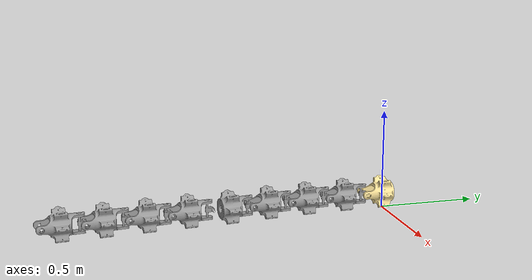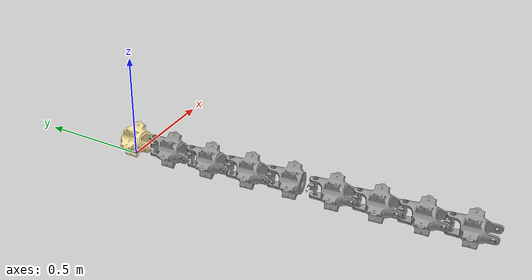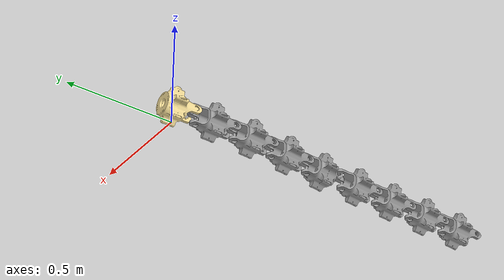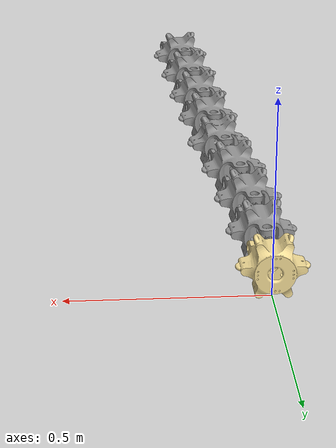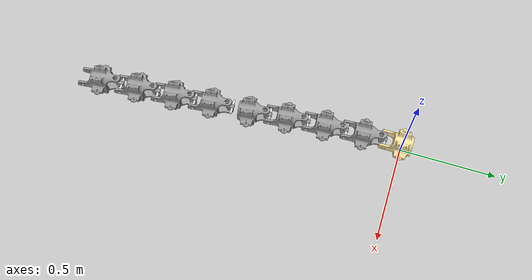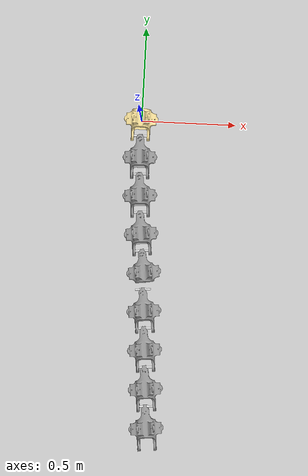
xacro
<?xml version="1.0" ?>
<!-- |    This document was autogenerated by xacro from snake.urdf                     | -->
<!-- |    EDITING THIS FILE BY HAND IS NOT RECOMMENDED                                 | -->
<robot name="snake2">
  <link name="base_link">
    <inertial>
      <origin rpy="0 0 0" xyz="-0.000234387980967782 -0.00697698813928649 0.0800930918880029"/>
      <mass value="0.7"/>
      <inertia ixx="5" ixy="0" ixz="0" iyy="5" iyz="0" izz="5"/>
    </inertial>
    <visual>
      <origin rpy="0 0 0" xyz="0 0 0"/>
      <geometry>
        <mesh filename="package://snake2_description/meshes/base_link.STL"/>
      </geometry>
      <material name="">
        <color rgba="0.968627450980392 0.87843137254902 0.6 1"/>
      </material>
    </visual>
    <collision>
      <origin rpy="0 0 0" xyz="0 0 0"/>
      <geometry>
        <mesh filename="package://snake2_description/meshes/base_link.STL"/>
      </geometry>
    </collision>
  </link>
  <link name="l1">
    <inertial>
      <origin rpy="0 0 0" xyz="-9.30008088317891E-08 6.32183255932228E-05 2.34841335058911E-08"/>
      <mass value="0.5"/>
      <inertia ixx="5" ixy="0" ixz="0" iyy="5" iyz="0" izz="5"/>
    </inertial>
    <visual>
      <origin rpy="0 0 0" xyz="0 0 0"/>
      <geometry>
        <mesh filename="package://snake2_description/meshes/l1.STL"/>
      </geometry>
      <material name="">
        <color rgba="1 1 1 1"/>
      </material>
    </visual>
    <collision>
      <origin rpy="0 0 0" xyz="0 0 0"/>
      <geometry>
        <mesh filename="package://snake2_description/meshes/l1.STL"/>
      </geometry>
    </collision>
  </link>
  <joint name="j1" type="revolute">
    <origin rpy="0 0 0" xyz="-0.00023776 -0.09187 0.078152"/>
    <parent link="base_link"/>
    <child link="l1"/>
    <axis xyz="1 0 0"/>
    <limit effort="100" lower="-7" upper="7" velocity="100"/>
  </joint>
  <link name="l2">
    <inertial>
      <origin rpy="0 0 0" xyz="0.00300986957255078 -0.0868389503008905 0.00190271917035976"/>
      <mass value="0.7"/>
      <inertia ixx="5" ixy="0" ixz="0" iyy="5" iyz="0" izz="5"/>
    </inertial>
    <visual>
      <origin rpy="0 0 0" xyz="0 0 0"/>
      <geometry>
        <mesh filename="package://snake2_description/meshes/l2.STL"/>
      </geometry>
      <material name="">
        <color rgba="0.6 0.6 0.6 1"/>
      </material>
    </visual>
    <collision>
      <origin rpy="0 0 0" xyz="0 0 0"/>
      <geometry>
        <mesh filename="package://snake2_description/meshes/l2.STL"/>
      </geometry>
    </collision>
  </link>
  <joint name="j2" type="revolute">
    <origin rpy="0 0 0" xyz="0 -0.025 0"/>
    <parent link="l1"/>
    <child link="l2"/>
    <axis xyz="0 0 -1"/>
    <limit effort="100" lower="-7" upper="7" velocity="100"/>
  </joint>
  <link name="l3">
    <inertial>
      <origin rpy="0 0 0" xyz="-2.27777575889654E-06 6.31778937628669E-05 2.33684780207022E-08"/>
      <mass value="0.5"/>
       <inertia ixx="5" ixy="0" ixz="0" iyy="5" iyz="0" izz="5"/>
    </inertial>
    <visual>
      <origin rpy="0 0 0" xyz="0 0 0"/>
      <geometry>
        <mesh filename="package://snake2_description/meshes/l3.STL"/>
      </geometry>
      <material name="">
        <color rgba="1 1 1 1"/>
      </material>
    </visual>
    <collision>
      <origin rpy="0 0 0" xyz="0 0 0"/>
      <geometry>
        <mesh filename="package://snake2_description/meshes/l3.STL"/>
      </geometry>
    </collision>
  </link>
  <joint name="j3" type="revolute">
    <origin rpy="0 0 0" xyz="0.00615167738184841 -0.177893667299857 0"/>
    <parent link="l2"/>
    <child link="l3"/>
    <axis xyz="0.999402625280054 0.0345599852913034 0"/>
    <limit effort="100" lower="-7" upper="7" velocity="100"/>
  </joint>
  <link name="l4">
    <inertial>
      <origin rpy="0 0 0" xyz="0.00600921102535792 -0.0866830524957057 0.00190271617698692"/>
      <mass value="0.707086339902103"/>
       <inertia ixx="5" ixy="0" ixz="0" iyy="5" iyz="0" izz="5"/>
    </inertial>
    <visual>
      <origin rpy="0 0 0" xyz="0 0 0"/>
      <geometry>
        <mesh filename="package://snake2_description/meshes/l4.STL"/>
      </geometry>
      <material name="">
        <color rgba="0.6 0.6 0.6 1"/>
      </material>
    </visual>
    <collision>
      <origin rpy="0 0 0" xyz="0 0 0"/>
      <geometry>
        <mesh filename="package://snake2_description/meshes/l4.STL"/>
      </geometry>
    </collision>
  </link>
  <joint name="j4" type="revolute">
    <origin rpy="0 0 0" xyz="0.000863999632282564 -0.0249850656320013 0"/>
    <parent link="l3"/>
    <child link="l4"/>
    <axis xyz="0 0 -1"/>
    <limit effort="100" lower="-7" upper="7" velocity="100"/>
  </joint>
  <link name="l5">
    <inertial>
      <origin rpy="0 0 0" xyz="-4.4598296490006E-06 6.30614553610576E-05 2.33497702943619E-08"/>
      <mass value="0.5"/>
       <inertia ixx="5" ixy="0" ixz="0" iyy="5" iyz="0" izz="5"/>
    </inertial>
    <visual>
      <origin rpy="0 0 0" xyz="0 0 0"/>
      <geometry>
        <mesh filename="package://snake2_description/meshes/l5.STL"/>
      </geometry>
      <material name="">
        <color rgba="1 1 1 1"/>
      </material>
    </visual>
    <collision>
      <origin rpy="0 0 0" xyz="0 0 0"/>
      <geometry>
        <mesh filename="package://snake2_description/meshes/l5.STL"/>
      </geometry>
    </collision>
  </link>
  <joint name="j5" type="revolute">
    <origin rpy="0 0 0" xyz="0.0122960050505949 -0.177574796240332 0"/>
    <parent link="l4"/>
    <child link="l5"/>
    <axis xyz="0.99761121483333 0.0690786800595353 0"/>
    <limit effort="100" lower="-7" upper="7" velocity="100"/>
  </joint>
  <link name="l6">
    <inertial>
      <origin rpy="0 0 0" xyz="0.00900137343373282 -0.0864234981702365 0.00190269434190572"/>
      <mass value="0.707087058502178"/>
       <inertia ixx="5" ixy="0" ixz="0" iyy="5" iyz="0" izz="5"/>
    </inertial>
    <visual>
      <origin rpy="0 0 0" xyz="0 0 0"/>
      <geometry>
        <mesh filename="package://snake2_description/meshes/l6.STL"/>
      </geometry>
      <material name="">
        <color rgba="0.6 0.6 0.6 1"/>
      </material>
    </visual>
    <collision>
      <origin rpy="0 0 0" xyz="0 0 0"/>
      <geometry>
        <mesh filename="package://snake_description/meshes/l6.STL"/>
      </geometry>
    </collision>
  </link>
  <joint name="j6" type="revolute">
    <origin rpy="0 0 0" xyz="0.00172696700148839 -0.0249402803708333 0"/>
    <parent link="l5"/>
    <child link="l6"/>
    <axis xyz="0 0 -1"/>
    <limit effort="100" lower="-7" upper="7" velocity="100"/>
  </joint>
  <link name="l7">
    <inertial>
      <origin rpy="0 0 0" xyz="-6.63653621674198E-06 6.28690839595825E-05 2.34841427936006E-08"/>
      <mass value="0.5"/>
       <inertia ixx="5" ixy="0" ixz="0" iyy="5" iyz="0" izz="5"/>
    </inertial>
    <visual>
      <origin rpy="0 0 0" xyz="0 0 0"/>
      <geometry>
        <mesh filename="package://snake2_description/meshes/l7.STL"/>
      </geometry>
      <material name="">
        <color rgba="1 1 1 1"/>
      </material>
    </visual>
    <collision>
      <origin rpy="0 0 0" xyz="0 0 0"/>
      <geometry>
        <mesh filename="package://snake2_description/meshes/l7.STL"/>
      </geometry>
    </collision>
  </link>
  <joint name="j7" type="revolute">
    <origin rpy="0 0 0" xyz="0.0184256420741932 -0.177043767792469 0"/>
    <parent link="l6"/>
    <child link="l7"/>
    <axis xyz="0.994627908946454 0.103514843113459 0"/>
    <limit effort="100" lower="-7" upper="7" velocity="100"/>
  </joint>
  <link name="l8">
    <inertial>
      <origin rpy="0 0 0" xyz="0.0115173506251668 -0.0827314123962982 0.00191470380704411"/>
      <mass value="0.702654051556184"/>
       <inertia ixx="5" ixy="0" ixz="0" iyy="5" iyz="0" izz="5"/>
    </inertial>
    <visual>
      <origin rpy="0 0 0" xyz="0 0 0"/>
      <geometry>
        <mesh filename="package://snake2_description/meshes/l8.STL"/>
      </geometry>
      <material name="">
        <color rgba="0.6 0.6 0.6 1"/>
      </material>
    </visual>
    <collision>
      <origin rpy="0 0 0" xyz="0 0 0"/>
      <geometry>
        <mesh filename="package://snake2_description/meshes/l8.STL"/>
      </geometry>
    </collision>
  </link>
  <joint name="j8" type="revolute">
    <origin rpy="0 0 0" xyz="0.00258787107783648 -0.0248656977236614 0"/>
    <parent link="l7"/>
    <child link="l8"/>
    <axis xyz="0 0 -1"/>
    <limit effort="100" lower="-7" upper="7" velocity="100"/>
  </joint>

  <link name="l9">
    <inertial>
      <origin rpy="0 0 0" xyz="-4.4598296490006E-06 6.30614553610576E-05 2.33497702943619E-08"/>
      <mass value="0.5"/>
       <inertia ixx="5" ixy="0" ixz="0" iyy="5" iyz="0" izz="5"/>
    </inertial>
    <visual>
      <origin rpy="0 0 0" xyz="0 0 0"/>
      <geometry>
        <mesh filename="package://snake2_description/meshes/l5.STL"/>
      </geometry>
      <material name="">
        <color rgba="1 1 1 1"/>
      </material>
    </visual>
    <collision>
      <origin rpy="0 0 0" xyz="0 0 0"/>
      <geometry>
        <mesh filename="package://snake2_description/meshes/l5.STL"/>
      </geometry>
    </collision>
  </link>
  <joint name="j9" type="revolute">
    <origin rpy="0 0 0" xyz="0.0122960050505949 -0.177574796240332 0"/>
    <parent link="l8"/>
    <child link="l9"/>
    <axis xyz="0.99761121483333 0.0690786800595353 0"/>
    <limit effort="100" lower="-7" upper="7" velocity="100"/>
  </joint>
  <link name="l10">
    <inertial>
      <origin rpy="0 0 0" xyz="0.00900137343373282 -0.0864234981702365 0.00190269434190572"/>
      <mass value="0.707087058502178"/>
       <inertia ixx="5" ixy="0" ixz="0" iyy="5" iyz="0" izz="5"/>
    </inertial>
    <visual>
      <origin rpy="0 0 0" xyz="0 0 0"/>
      <geometry>
        <mesh filename="package://snake2_description/meshes/l6.STL"/>
      </geometry>
      <material name="">
        <color rgba="0.6 0.6 0.6 1"/>
      </material>
    </visual>
    <collision>
      <origin rpy="0 0 0" xyz="0 0 0"/>
      <geometry>
        <mesh filename="package://snake_description/meshes/l6.STL"/>
      </geometry>
    </collision>
  </link>
  <joint name="j10" type="revolute">
    <origin rpy="0 0 0" xyz="0.00172696700148839 -0.0249402803708333 0"/>
    <parent link="l9"/>
    <child link="l10"/>
    <axis xyz="0 0 -1"/>
    <limit effort="100" lower="-7" upper="7" velocity="100"/>
  </joint>

  <link name="l11">
    <inertial>
      <origin rpy="0 0 0" xyz="-4.4598296490006E-06 6.30614553610576E-05 2.33497702943619E-08"/>
      <mass value="0.5"/>
       <inertia ixx="5" ixy="0" ixz="0" iyy="5" iyz="0" izz="5"/>
    </inertial>
    <visual>
      <origin rpy="0 0 0" xyz="0 0 0"/>
      <geometry>
        <mesh filename="package://snake2_description/meshes/l5.STL"/>
      </geometry>
      <material name="">
        <color rgba="1 1 1 1"/>
      </material>
    </visual>
    <collision>
      <origin rpy="0 0 0" xyz="0 0 0"/>
      <geometry>
        <mesh filename="package://snake2_description/meshes/l5.STL"/>
      </geometry>
    </collision>
  </link>
  <joint name="j11" type="revolute">
    <origin rpy="0 0 0" xyz="0.0122960050505949 -0.177574796240332 0"/>
    <parent link="l10"/>
    <child link="l11"/>
    <axis xyz="0.99761121483333 0.0690786800595353 0"/>
    <limit effort="100" lower="-7" upper="7" velocity="100"/>
  </joint>
  <link name="l12">
    <inertial>
      <origin rpy="0 0 0" xyz="0.00900137343373282 -0.0864234981702365 0.00190269434190572"/>
      <mass value="0.707087058502178"/>
       <inertia ixx="5" ixy="0" ixz="0" iyy="5" iyz="0" izz="5"/>
    </inertial>
    <visual>
      <origin rpy="0 0 0" xyz="0 0 0"/>
      <geometry>
        <mesh filename="package://snake2_description/meshes/l6.STL"/>
      </geometry>
      <material name="">
        <color rgba="0.6 0.6 0.6 1"/>
      </material>
    </visual>
    <collision>
      <origin rpy="0 0 0" xyz="0 0 0"/>
      <geometry>
        <mesh filename="package://snake_description/meshes/l6.STL"/>
      </geometry>
    </collision>
  </link>
  <joint name="j12" type="revolute">
    <origin rpy="0 0 0" xyz="0.00172696700148839 -0.0249402803708333 0"/>
    <parent link="l11"/>
    <child link="l12"/>
    <axis xyz="0 0 -1"/>
    <limit effort="100" lower="-7" upper="7" velocity="100"/>
  </joint>

  <link name="l13">
    <inertial>
      <origin rpy="0 0 0" xyz="-4.4598296490006E-06 6.30614553610576E-05 2.33497702943619E-08"/>
      <mass value="0.5"/>
       <inertia ixx="5" ixy="0" ixz="0" iyy="5" iyz="0" izz="5"/>
    </inertial>
    <visual>
      <origin rpy="0 0 0" xyz="0 0 0"/>
      <geometry>
        <mesh filename="package://snake2_description/meshes/l5.STL"/>
      </geometry>
      <material name="">
        <color rgba="1 1 1 1"/>
      </material>
    </visual>
    <collision>
      <origin rpy="0 0 0" xyz="0 0 0"/>
      <geometry>
        <mesh filename="package://snake2_description/meshes/l5.STL"/>
      </geometry>
    </collision>
  </link>
  <joint name="j13" type="revolute">
    <origin rpy="0 0 0" xyz="0.0122960050505949 -0.177574796240332 0"/>
    <parent link="l12"/>
    <child link="l13"/>
    <axis xyz="0.99761121483333 0.0690786800595353 0"/>
    <limit effort="100" lower="-7" upper="7" velocity="100"/>
  </joint>
  <link name="l14">
    <inertial>
      <origin rpy="0 0 0" xyz="0.00900137343373282 -0.0864234981702365 0.00190269434190572"/>
      <mass value="0.707087058502178"/>
       <inertia ixx="5" ixy="0" ixz="0" iyy="5" iyz="0" izz="5"/>
    </inertial>
    <visual>
      <origin rpy="0 0 0" xyz="0 0 0"/>
      <geometry>
        <mesh filename="package://snake2_description/meshes/l6.STL"/>
      </geometry>
      <material name="">
        <color rgba="0.6 0.6 0.6 1"/>
      </material>
    </visual>
    <collision>
      <origin rpy="0 0 0" xyz="0 0 0"/>
      <geometry>
        <mesh filename="package://snake2_description/meshes/l6.STL"/>
      </geometry>
    </collision>
  </link>
  <joint name="j14" type="revolute">
    <origin rpy="0 0 0" xyz="0.00172696700148839 -0.0249402803708333 0"/>
    <parent link="l13"/>
    <child link="l14"/>
    <axis xyz="0 0 -1"/>
    <limit effort="100" lower="-7" upper="7" velocity="100"/>
  </joint>

  <link name="l15">
    <inertial>
      <origin rpy="0 0 0" xyz="-4.4598296490006E-06 6.30614553610576E-05 2.33497702943619E-08"/>
      <mass value="0.5"/>
       <inertia ixx="5" ixy="0" ixz="0" iyy="5" iyz="0" izz="5"/>
    </inertial>
    <visual>
      <origin rpy="0 0 0" xyz="0 0 0"/>
      <geometry>
        <mesh filename="package://snake2_description/meshes/l5.STL"/>
      </geometry>
      <material name="">
        <color rgba="1 1 1 1"/>
      </material>
    </visual>
    <collision>
      <origin rpy="0 0 0" xyz="0 0 0"/>
      <geometry>
        <mesh filename="package://snake2_description/meshes/l5.STL"/>
      </geometry>
    </collision>
  </link>
  <joint name="j15" type="revolute">
    <origin rpy="0 0 0" xyz="0.0122960050505949 -0.177574796240332 0"/>
    <parent link="l14"/>
    <child link="l15"/>
    <axis xyz="0.99761121483333 0.0690786800595353 0"/>
    <limit effort="100" lower="-7" upper="7" velocity="100"/>
  </joint>
  <link name="l16">
    <inertial>
      <origin rpy="0 0 0" xyz="0.00900137343373282 -0.0864234981702365 0.00190269434190572"/>
      <mass value="0.707087058502178"/>
       <inertia ixx="5" ixy="0" ixz="0" iyy="5" iyz="0" izz="5"/>
    </inertial>
    <visual>
      <origin rpy="0 0 0" xyz="0 0 0"/>
      <geometry>
        <mesh filename="package://snake2_description/meshes/l6.STL"/>
      </geometry>
      <material name="">
        <color rgba="0.6 0.6 0.6 1"/>
      </material>
    </visual>
    <collision>
      <origin rpy="0 0 0" xyz="0 0 0"/>
      <geometry>
        <mesh filename="package://snake_description/meshes/l6.STL"/>
      </geometry>
    </collision>
  </link>
  <joint name="j16" type="revolute">
    <origin rpy="0 0 0" xyz="0.00172696700148839 -0.0249402803708333 0"/>
    <parent link="l15"/>
    <child link="l16"/>
    <axis xyz="0 0 -1"/>
    <limit effort="100" lower="-7" upper="7" velocity="100"/>
  </joint>

  <transmission name="trans_j1">
    <type>transmission_interface/SimpleTransmission</type>
    <joint name="j1">
      <hardwareInterface>hardware_interface/EffortJointInterface</hardwareInterface>
    </joint>
    <actuator name="j1_motor">
      <hardwareInterface>hardware_interface/EffortJointInterface</hardwareInterface>
      <mechanicalReduction>1</mechanicalReduction>
    </actuator>
  </transmission>

  <transmission name="trans_j2">
    <type>transmission_interface/SimpleTransmission</type>
    <joint name="j2">
      <hardwareInterface>hardware_interface/EffortJointInterface</hardwareInterface>
    </joint>
    <actuator name="j2_motor">
      <hardwareInterface>hardware_interface/EffortJointInterface</hardwareInterface>
      <mechanicalReduction>1</mechanicalReduction>
    </actuator>
  </transmission>

  <transmission name="trans_j3">
    <type>transmission_interface/SimpleTransmission</type>
    <joint name="j3">
      <hardwareInterface>hardware_interface/EffortJointInterface</hardwareInterface>
    </joint>
    <actuator name="j3_motor">
      <hardwareInterface>hardware_interface/EffortJointInterface</hardwareInterface>
      <mechanicalReduction>1</mechanicalReduction>
    </actuator>
  </transmission>

  <transmission name="trans_j4">
    <type>transmission_interface/SimpleTransmission</type>
    <joint name="j4">
      <hardwareInterface>hardware_interface/EffortJointInterface</hardwareInterface>
    </joint>
    <actuator name="j4_motor">
      <hardwareInterface>hardware_interface/EffortJointInterface</hardwareInterface>
      <mechanicalReduction>1</mechanicalReduction>
    </actuator>
  </transmission>

  <transmission name="trans_j5">
    <type>transmission_interface/SimpleTransmission</type>
    <joint name="j5">
      <hardwareInterface>hardware_interface/EffortJointInterface</hardwareInterface>
    </joint>
    <actuator name="j5_motor">
      <hardwareInterface>hardware_interface/EffortJointInterface</hardwareInterface>
      <mechanicalReduction>1</mechanicalReduction>
    </actuator>
  </transmission>

  <transmission name="trans_j6">
    <type>transmission_interface/SimpleTransmission</type>
    <joint name="j6">
      <hardwareInterface>hardware_interface/EffortJointInterface</hardwareInterface>
    </joint>
    <actuator name="j6_motor">
      <hardwareInterface>hardware_interface/EffortJointInterface</hardwareInterface>
      <mechanicalReduction>1</mechanicalReduction>
    </actuator>
  </transmission>

  <transmission name="trans_j7">
    <type>transmission_interface/SimpleTransmission</type>
    <joint name="j7">
      <hardwareInterface>hardware_interface/EffortJointInterface</hardwareInterface>
    </joint>
    <actuator name="j7_motor">
      <hardwareInterface>hardware_interface/EffortJointInterface</hardwareInterface>
      <mechanicalReduction>1</mechanicalReduction>
    </actuator>
  </transmission>

  <transmission name="trans_j8">
    <type>transmission_interface/SimpleTransmission</type>
    <joint name="j8">
      <hardwareInterface>hardware_interface/EffortJointInterface</hardwareInterface>
    </joint>
    <actuator name="j8_motor">
      <hardwareInterface>hardware_interface/EffortJointInterface</hardwareInterface>
      <mechanicalReduction>1</mechanicalReduction>
    </actuator>
  </transmission>

  <transmission name="trans_j9">
    <type>transmission_interface/SimpleTransmission</type>
    <joint name="j9">
      <hardwareInterface>hardware_interface/EffortJointInterface</hardwareInterface>
    </joint>
    <actuator name="j9_motor">
      <hardwareInterface>hardware_interface/EffortJointInterface</hardwareInterface>
      <mechanicalReduction>1</mechanicalReduction>
    </actuator>
  </transmission>

  <transmission name="trans_j10">
    <type>transmission_interface/SimpleTransmission</type>
    <joint name="j10">
      <hardwareInterface>hardware_interface/EffortJointInterface</hardwareInterface>
    </joint>
    <actuator name="j10_motor">
      <hardwareInterface>hardware_interface/EffortJointInterface</hardwareInterface>
      <mechanicalReduction>1</mechanicalReduction>
    </actuator>
  </transmission>

  <transmission name="trans_j11">
    <type>transmission_interface/SimpleTransmission</type>
    <joint name="j11">
      <hardwareInterface>hardware_interface/EffortJointInterface</hardwareInterface>
    </joint>
    <actuator name="j11_motor">
      <hardwareInterface>hardware_interface/EffortJointInterface</hardwareInterface>
      <mechanicalReduction>1</mechanicalReduction>
    </actuator>
  </transmission>

  <transmission name="trans_j12">
    <type>transmission_interface/SimpleTransmission</type>
    <joint name="j12">
      <hardwareInterface>hardware_interface/EffortJointInterface</hardwareInterface>
    </joint>
    <actuator name="j12_motor">
      <hardwareInterface>hardware_interface/EffortJointInterface</hardwareInterface>
      <mechanicalReduction>1</mechanicalReduction>
    </actuator>
  </transmission>

  <transmission name="trans_j13">
    <type>transmission_interface/SimpleTransmission</type>
    <joint name="j13">
      <hardwareInterface>hardware_interface/EffortJointInterface</hardwareInterface>
    </joint>
    <actuator name="j13_motor">
      <hardwareInterface>hardware_interface/EffortJointInterface</hardwareInterface>
      <mechanicalReduction>1</mechanicalReduction>
    </actuator>
  </transmission>

  <transmission name="trans_j14">
    <type>transmission_interface/SimpleTransmission</type>
    <joint name="j14">
      <hardwareInterface>hardware_interface/EffortJointInterface</hardwareInterface>
    </joint>
    <actuator name="j14_motor">
      <hardwareInterface>hardware_interface/EffortJointInterface</hardwareInterface>
      <mechanicalReduction>1</mechanicalReduction>
    </actuator>
  </transmission>

  <transmission name="trans_j15">
    <type>transmission_interface/SimpleTransmission</type>
    <joint name="j15">
      <hardwareInterface>hardware_interface/EffortJointInterface</hardwareInterface>
    </joint>
    <actuator name="j15_motor">
      <hardwareInterface>hardware_interface/EffortJointInterface</hardwareInterface>
      <mechanicalReduction>1</mechanicalReduction>
    </actuator>
  </transmission>

  <transmission name="trans_j16">
    <type>transmission_interface/SimpleTransmission</type>
    <joint name="j16">
      <hardwareInterface>hardware_interface/EffortJointInterface</hardwareInterface>
    </joint>
    <actuator name="j16_motor">
      <hardwareInterface>hardware_interface/EffortJointInterface</hardwareInterface>
      <mechanicalReduction>1</mechanicalReduction>
    </actuator>
  </transmission>

  <gazebo>
    <plugin filename="libgazebo_ros_control.so" name="gazebo_ros_control">
      <robotNamespace>/snake2</robotNamespace>
    </plugin>
  </gazebo>
</robot>
